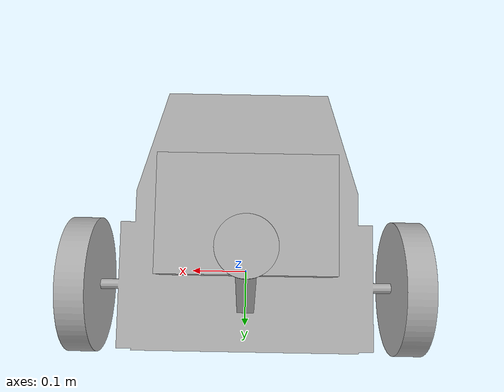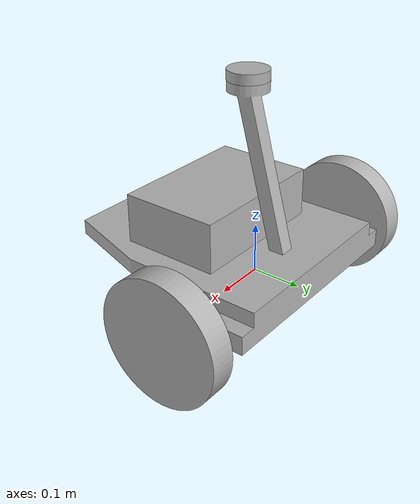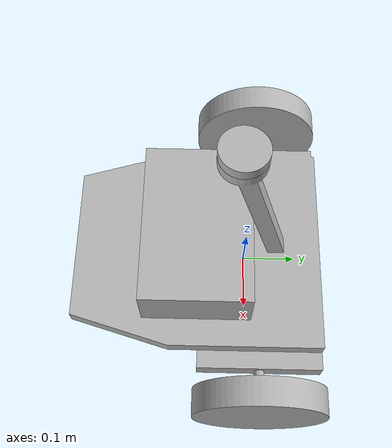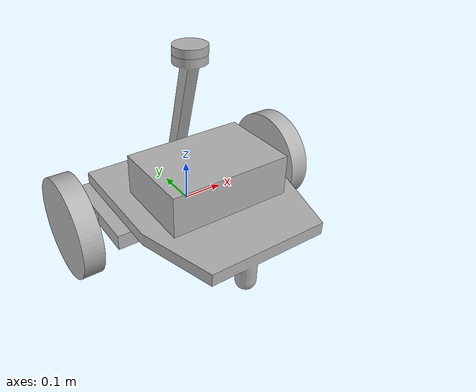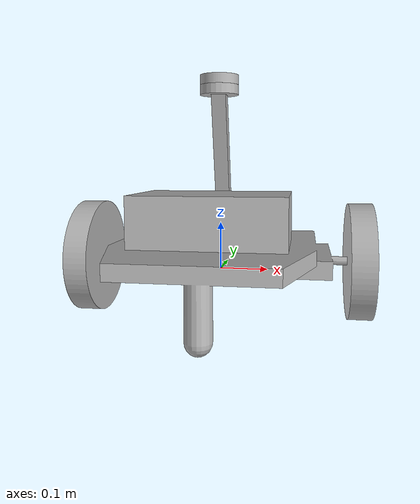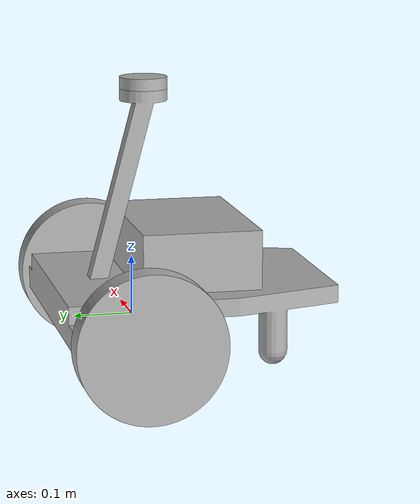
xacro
<?xml version="1.0" ?>
<robot name="greeting" xmlns:xacro="http://www.ros.org/wiki/xacro">

<xacro:include filename="$(find greeting_description)/urdf/materials.xacro" />
<xacro:include filename="$(find greeting_description)/urdf/greeting.trans" />
<xacro:include filename="$(find greeting_description)/urdf/greeting.gazebo" />
<link name="base_link">
  <inertial>
    <origin xyz="3.291987897011012e-05 -0.038830153540959485 0.044361029708319816" rpy="0 0 0"/>
    <mass value="10.493387204444465"/>
    <inertia ixx="0.185151" iyy="0.174145" izz="0.301683" ixy="7.6e-05" iyz="0.001722" ixz="-3e-06"/>
  </inertial>
  <visual>
    <origin xyz="0 0 0" rpy="0 0 0"/>
    <geometry>
      <mesh filename="package://greeting_description/meshes/base_link.stl" scale="0.001 0.001 0.001"/>
    </geometry>
    <material name="silver"/>
  </visual>
  <collision>
    <origin xyz="0 0 0" rpy="0 0 0"/>
    <geometry>
      <mesh filename="package://greeting_description/meshes/base_link.stl" scale="0.001 0.001 0.001"/>
    </geometry>
  </collision>
</link>

<link name="left_wheel_1">
  <inertial>
    <origin xyz="0.024999999999999967 3.122502256758253e-17 3.8163916471489756e-17" rpy="0 0 0"/>
    <mass value="2.19217390124383"/>
    <inertia ixx="0.016448" iyy="0.008681" izz="0.008681" ixy="-0.0" iyz="0.0" ixz="0.0"/>
  </inertial>
  <visual>
    <origin xyz="-0.2675 -0.02673 -0.0185" rpy="0 0 0"/>
    <geometry>
      <mesh filename="package://greeting_description/meshes/left_wheel_1.stl" scale="0.001 0.001 0.001"/>
    </geometry>
    <material name="silver"/>
  </visual>
  <collision>
    <origin xyz="-0.2675 -0.02673 -0.0185" rpy="0 0 0"/>
    <geometry>
      <mesh filename="package://greeting_description/meshes/left_wheel_1.stl" scale="0.001 0.001 0.001"/>
    </geometry>
  </collision>
</link>

<link name="right_wheel_1">
  <inertial>
    <origin xyz="-0.024999999999999967 3.122502256758253e-17 3.8163916471489756e-17" rpy="0 0 0"/>
    <mass value="2.19217390124383"/>
    <inertia ixx="0.016448" iyy="0.008681" izz="0.008681" ixy="0.0" iyz="0.0" ixz="0.0"/>
  </inertial>
  <visual>
    <origin xyz="0.2675 -0.02673 -0.0185" rpy="0 0 0"/>
    <geometry>
      <mesh filename="package://greeting_description/meshes/right_wheel_1.stl" scale="0.001 0.001 0.001"/>
    </geometry>
    <material name="silver"/>
  </visual>
  <collision>
    <origin xyz="0.2675 -0.02673 -0.0185" rpy="0 0 0"/>
    <geometry>
      <mesh filename="package://greeting_description/meshes/right_wheel_1.stl" scale="0.001 0.001 0.001"/>
    </geometry>
  </collision>
</link>

<link name="loads_1">
  <inertial>
    <origin xyz="-3.552713678800501e-17 -5.551115123125783e-17 0.05" rpy="0 0 0"/>
    <mass value="51.6"/>
    <inertia ixx="0.215" iyy="0.43" izz="0.559" ixy="0.0" iyz="-0.0" ixz="0.0"/>
  </inertial>
  <visual>
    <origin xyz="0.0 0.09077 -0.067" rpy="0 0 0"/>
    <geometry>
      <mesh filename="package://greeting_description/meshes/loads_1.stl" scale="0.001 0.001 0.001"/>
    </geometry>
    <material name="silver"/>
  </visual>
  <collision>
    <origin xyz="0.0 0.09077 -0.067" rpy="0 0 0"/>
    <geometry>
      <mesh filename="package://greeting_description/meshes/loads_1.stl" scale="0.001 0.001 0.001"/>
    </geometry>
  </collision>
</link>

<link name="lidar_1">
  <inertial>
    <origin xyz="0.0 3.8497681442012377e-07 0.010000000000000064" rpy="0 0 0"/>
    <mass value="0.7891680745817558"/>
    <inertia ixx="0.000342" iyy="0.000342" izz="0.000631" ixy="-0.0" iyz="-0.0" ixz="-0.0"/>
  </inertial>
  <visual>
    <origin xyz="-0.0 0.021586 -0.387" rpy="0 0 0"/>
    <geometry>
      <mesh filename="package://greeting_description/meshes/lidar_1.stl" scale="0.001 0.001 0.001"/>
    </geometry>
    <material name="silver"/>
  </visual>
  <collision>
    <origin xyz="-0.0 0.021586 -0.387" rpy="0 0 0"/>
    <geometry>
      <mesh filename="package://greeting_description/meshes/lidar_1.stl" scale="0.001 0.001 0.001"/>
    </geometry>
  </collision>
</link>

<joint name="Rev1" type="continuous">
  <origin xyz="0.2675 0.02673 0.0185" rpy="0 0 0"/>
  <parent link="base_link"/>
  <child link="left_wheel_1"/>
  <axis xyz="-1.0 0.0 0.0"/>
</joint>

<joint name="Rev2" type="continuous">
  <origin xyz="-0.2675 0.02673 0.0185" rpy="0 0 0"/>
  <parent link="base_link"/>
  <child link="right_wheel_1"/>
  <axis xyz="-1.0 0.0 0.0"/>
</joint>

<joint name="Rigid3_load" type="fixed">
  <origin xyz="0.0 -0.09077 0.067" rpy="0 0 0"/>
  <parent link="base_link"/>
  <child link="loads_1"/>
</joint>

<joint name="Rigid4_lidar" type="fixed">
  <origin xyz="0.0 -0.021586 0.387" rpy="0 0 1.57"/>
  <parent link="base_link"/>
  <child link="lidar_1"/>
</joint>

</robot>

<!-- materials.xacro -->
<robot name="greeting" xmlns:xacro="http://www.ros.org/wiki/xacro" >

<material name="silver">
  <color rgba="0.700 0.700 0.700 1.000"/>
</material>

</robot>

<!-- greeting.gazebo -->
<robot name="greeting" xmlns:xacro="http://www.ros.org/wiki/xacro" >

<xacro:property name="body_color" value="Gazebo/Silver" />
<xacro:property name="black_color" value="Gazebo/Black" />
<xacro:property name="load_color" value="Gazebo/Orange" />

<gazebo>
  <plugin name="control" filename="libgazebo_ros_control.so"/>
</gazebo>
<gazebo reference="base_link">
  <material>${body_color}</material>
  <mu1>0.1</mu1>
  <mu2>0.1</mu2>
  <selfCollide>true</selfCollide>
  <gravity>true</gravity>
</gazebo>

<gazebo reference="left_wheel_1">
  <material>${black_color}</material>
  <mu1>1500</mu1>
  <mu2>1500</mu2>
  <selfCollide>true</selfCollide>
</gazebo>

<gazebo reference="right_wheel_1">
  <material>${black_color}</material>
  <mu1>1500</mu1>
  <mu2>1500</mu2>
  <selfCollide>true</selfCollide>
</gazebo>

<gazebo reference="loads_1">
  <material>${load_color}</material>
  <mu1>0.2</mu1>
  <mu2>0.2</mu2>
  <selfCollide>true</selfCollide>
</gazebo>

<gazebo reference="lidar_1">
  <material>${body_color}</material>
  <mu1>0.2</mu1>
  <mu2>0.2</mu2>
  <selfCollide>true</selfCollide>
</gazebo>

<gazebo>
  <plugin name="differential_drive_controller" filename="libgazebo_ros_diff_drive.so">

    <!-- Plugin update rate in Hz -->
    <updateRate>100</updateRate>

    <!-- Name of left joint, defaults to `left_joint` -->
    <leftJoint>Rev1</leftJoint>

    <!-- Name of right joint, defaults to `right_joint` -->
    <rightJoint>Rev2</rightJoint>

    <!-- The distance from the center of one wheel to the other, in meters, defaults to 0.34 m -->
    <wheelSeparation>0.585</wheelSeparation>

    <!-- Diameter of the wheels, in meters, defaults to 0.15 m -->
    <wheelDiameter>0.245</wheelDiameter>

    <!-- Wheel acceleration, in rad/s^2, defaults to 0.0 rad/s^2 -->
    <wheelAcceleration>1.0</wheelAcceleration>

    <!-- Maximum torque which the wheels can produce, in Nm, defaults to 5 Nm -->
    <wheelTorque>50</wheelTorque>

    <!-- Topic to receive geometry_msgs/Twist message commands, defaults to `cmd_vel` -->
    <commandTopic>cmd_vel</commandTopic>

    <!-- Topic to publish nav_msgs/Odometry messages, defaults to `odom` -->
    <odometryTopic>odom</odometryTopic>

    <!-- Odometry frame, defaults to `odom` -->
    <odometryFrame>odom</odometryFrame>

    <!-- Robot frame to calculate odometry from, defaults to `base_footprint` -->
    <robotBaseFrame>base_link</robotBaseFrame>

    <!-- Odometry source, 0 for ENCODER, 1 for WORLD, defaults to WORLD -->
    <odometrySource>1</odometrySource>

    <!-- Set to true to publish transforms for the wheel links, defaults to false -->
    <publishWheelTF>true</publishWheelTF>

    <!-- Set to true to publish transforms for the odometry, defaults to true -->
    <publishOdom>true</publishOdom>

    <!-- Set to true to publish sensor_msgs/JointState on /joint_states for the wheel joints, defaults to false -->
    <publishWheelJointState>true</publishWheelJointState>

    <!-- Set to true to swap right and left wheels, defaults to true -->
    <legacyMode>false</legacyMode>
  </plugin>

</gazebo>
 <!-- hokuyo -->
  <gazebo reference="lidar_1">
    <sensor type="ray" name="head_hokuyo_sensor">
      <pose>0 0 0 0 0 0</pose>
      <visualize>true</visualize>
      <update_rate>40</update_rate>
      <ray>
        <scan>
          <horizontal>
            <samples>720</samples>
            <resolution>1</resolution>
            <min_angle>-1.570796</min_angle>
            <max_angle>1.570796</max_angle>
          </horizontal>
        </scan>
        <range>
          <min>0.10</min>
          <max>30.0</max>
          <resolution>0.01</resolution>
        </range>
        <noise>
          <type>gaussian</type>
          <mean>0.0</mean>
          <stddev>0.01</stddev>
        </noise>
      </ray>
      <plugin name="gazebo_ros_head_hokuyo_controller" filename="libgazebo_ros_laser.so">
        <topicName>/scan</topicName>
        <frameName>lidar_1</frameName>
      </plugin>
    </sensor>
  </gazebo>
</robot>
